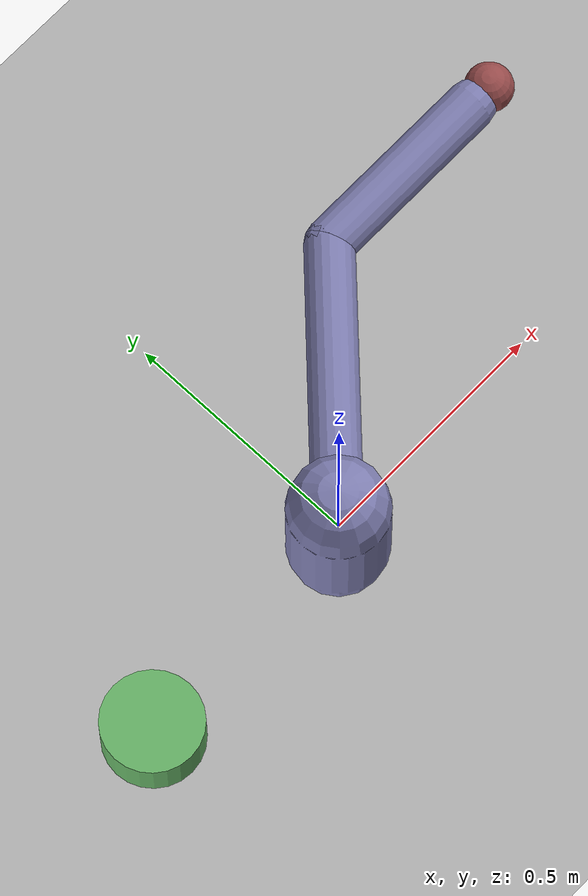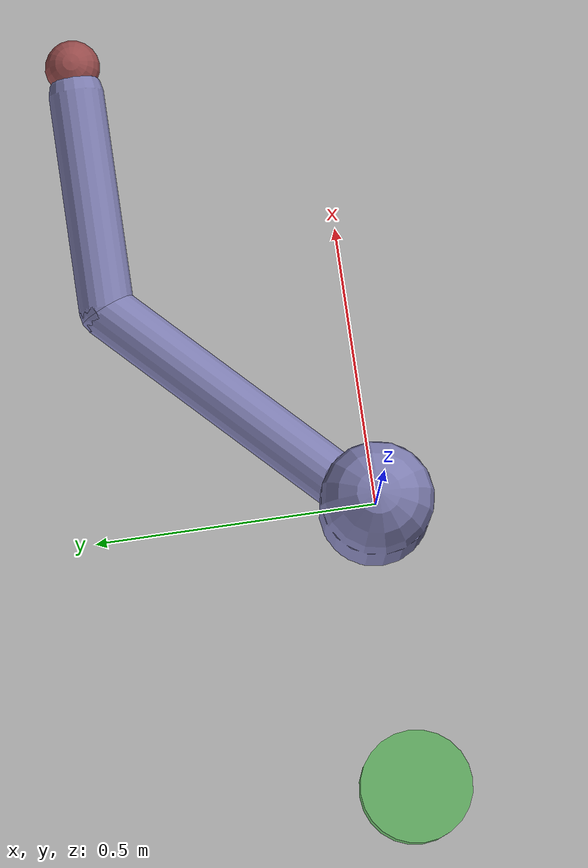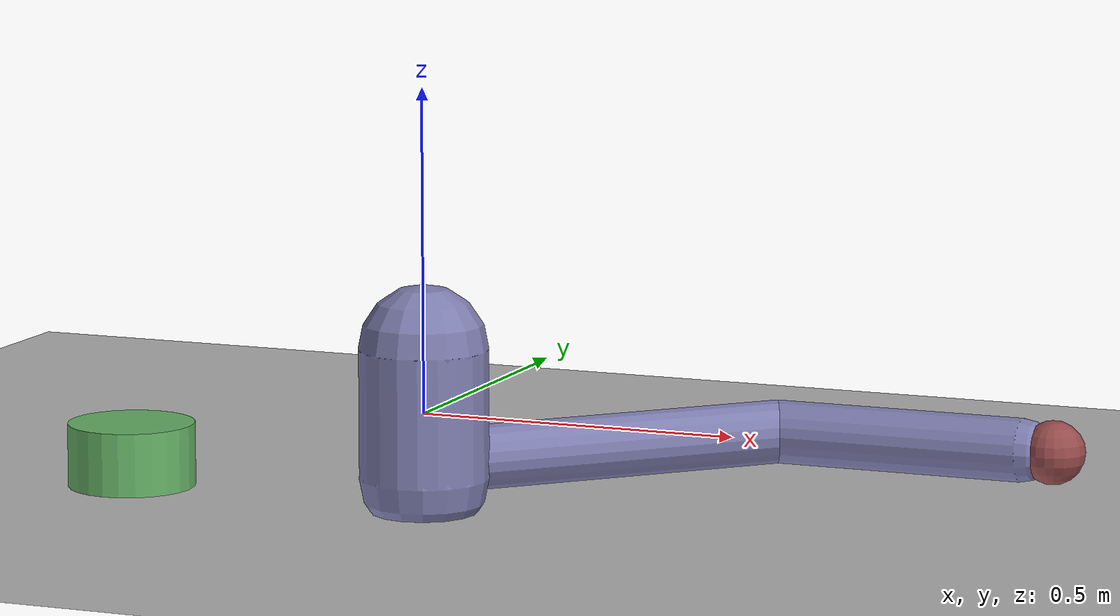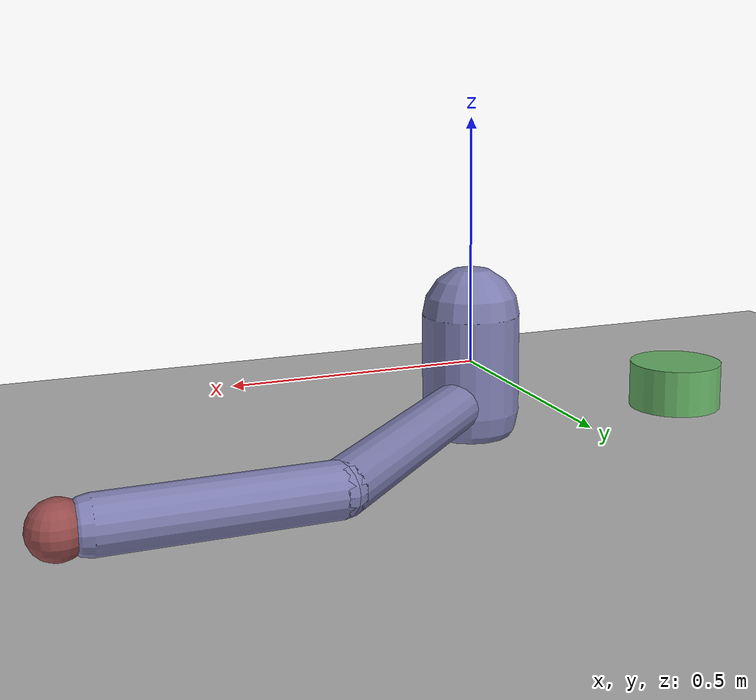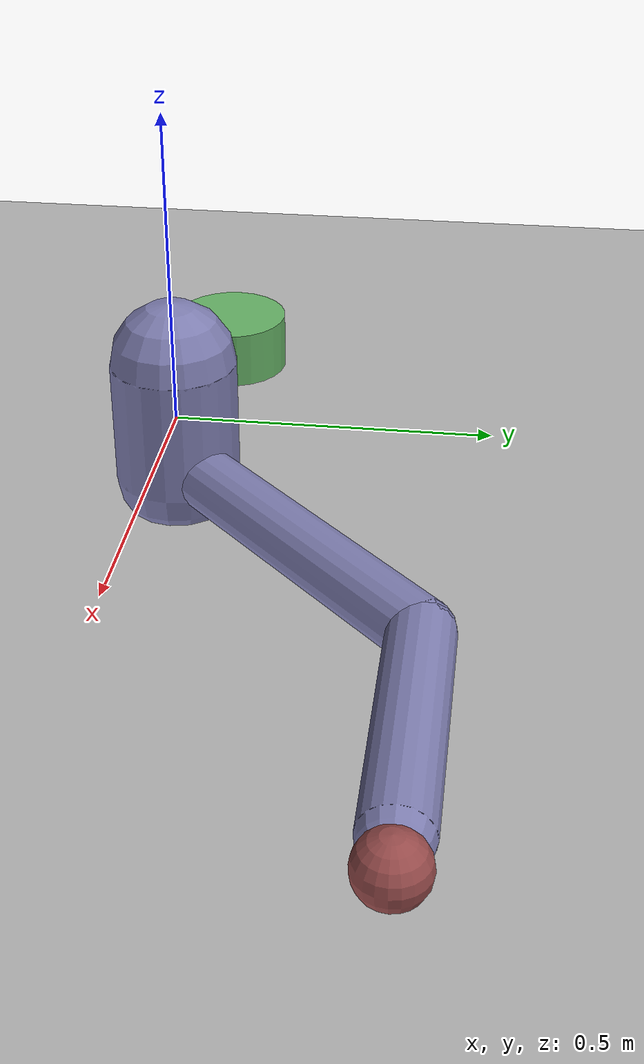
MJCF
<!--Copyright (c) Microsoft Corporation.
Licensed under the MIT license.-->

<mujoco model="reacher2d">
	<compiler angle="radian" inertiafromgeom="true" coordinate="local"/>
	<default>
		<joint armature="0.05" damping="1" limited="true"/>
		<geom friction="1 0.1 0.1" rgba="0.5 0.5 0.7 1" density="1000" condim="1" contype="1" conaffinity="1"/>
	</default>
	<option gravity="0 0 0" integrator="RK4" timestep="0.01"/>
    <worldbody>
        <light diffuse=".5 .5 .5" pos="0 0 3" dir="0 0 -1"/>
        <geom name="floor" type="plane" pos="0 0 -0.15" size="2 2 0.1" contype="1" conaffinity="1" rgba="0.7 0.7 0.7 1"/>
        <geom name="root" type="capsule" fromto="0 0 -0.1 0 0 0.1" size="0.1"/>
        <body name="shoulder" pos="0 0 -0.075" axisangle="0 0 1 0.785">
            <joint name="shoulder" type="hinge" pos="0 0 0" axis="0 0 1" limited="false" damping="1.0" />
            <geom name="shoulder" type="capsule"  fromto="0 0 0 0.6 0 0" size="0.05" contype="1" conaffinity="1"/>
            <body name="elbow" pos="0.6 0 0" axisangle="0 0 1 -0.785">
                <joint name="elbow" type="hinge" pos="0 0 0" axis="0 0 1" range="-2.0 3.5" damping="1.0"/>
                <geom name="elbow" type="capsule"  fromto="0 0 0 0.4 0 0" size="0.05" contype="1" conaffinity="1"/>
                <site rgba="0.6 0.3 0.3 1" type="sphere" pos="0.45 0 0" size="0.05" name="fingertip"/>
            </body>
        </body>

        <body name="target" pos="-0.5 0 -0.1">
            <geom rgba="0.4 0.7 0.4 1" type="cylinder" size="0.1 0.05 0.05" contype="0" conaffinity="0"/>
        </body>
    </worldbody>

    <actuator>
        <motor joint="shoulder" ctrlrange="-1 1" ctrllimited="true" gear="1"/>
        <motor joint="elbow" ctrlrange="-1 1" ctrllimited="true" gear="1"/>
    </actuator>
</mujoco>
